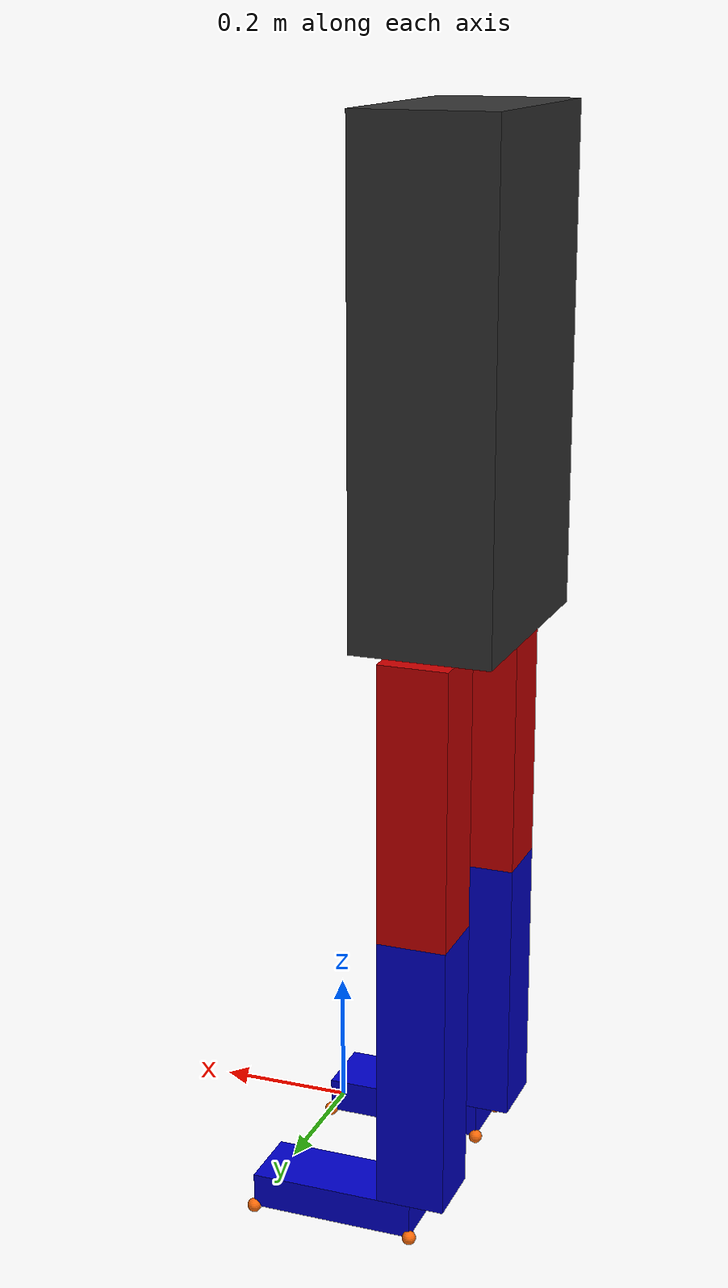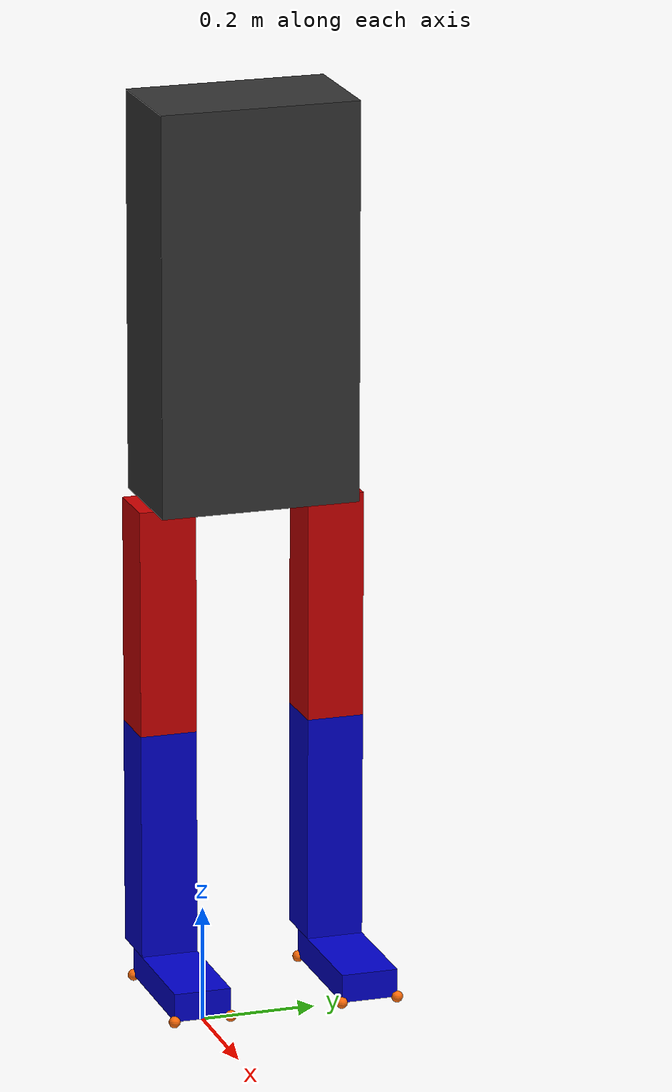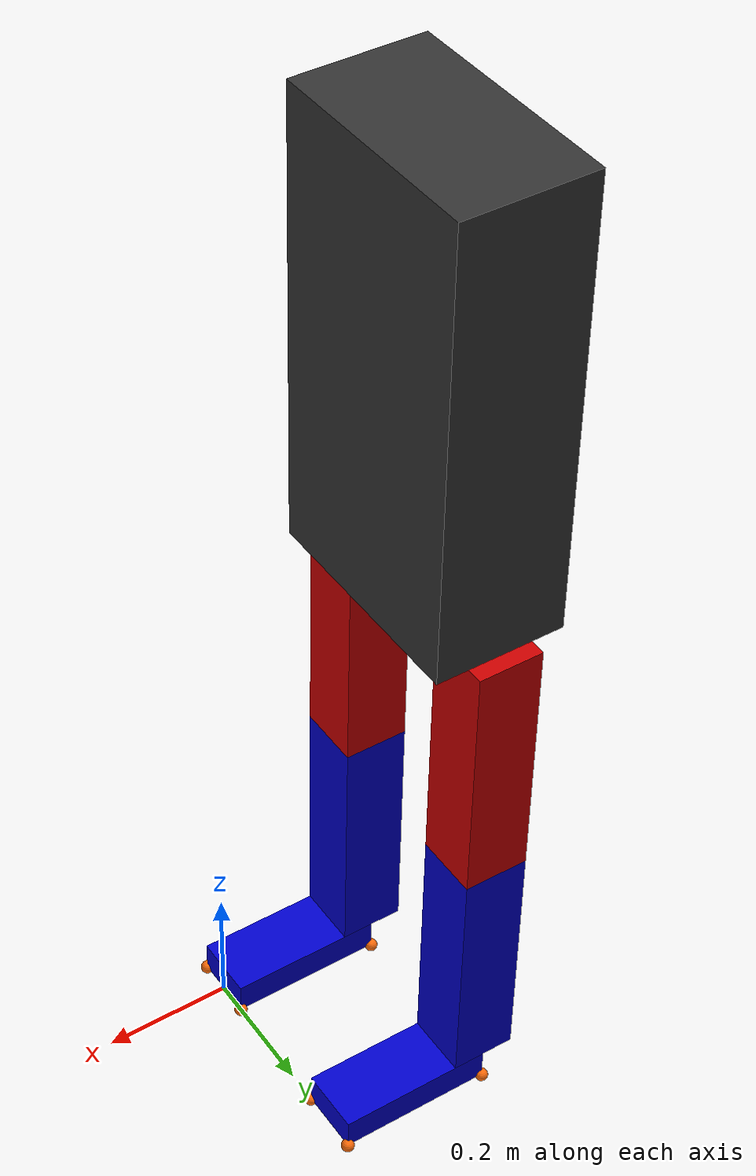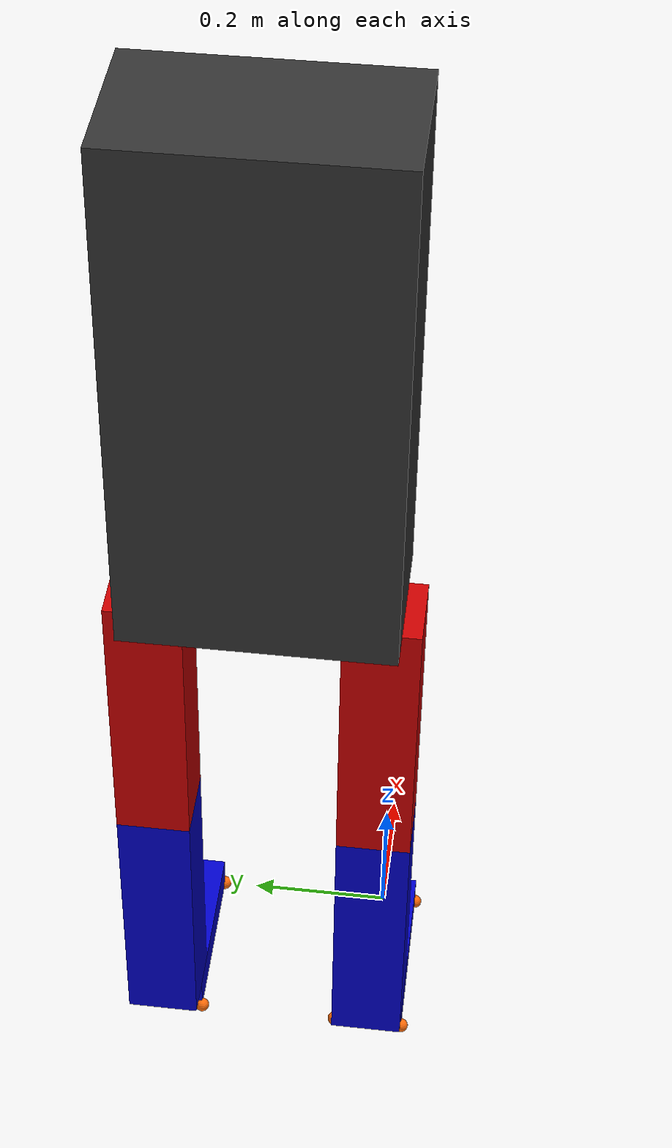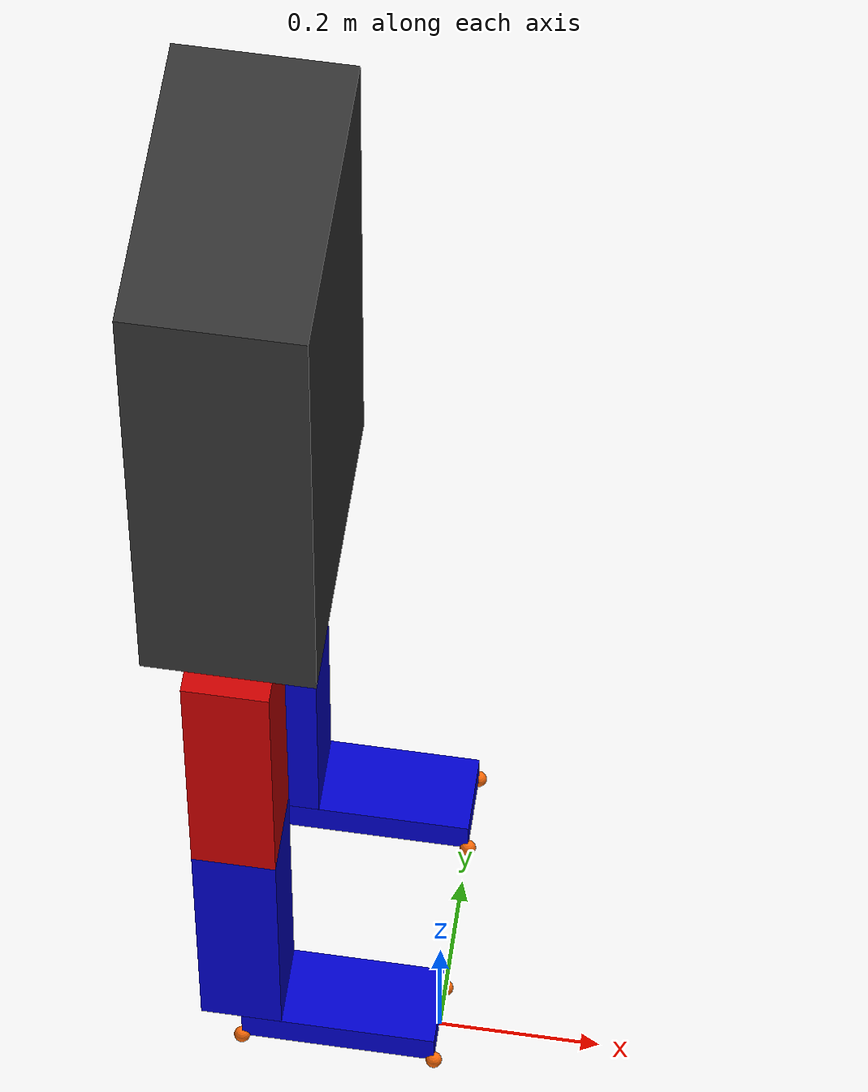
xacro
<robot xmlns:xacro="http://www.ros.org/wiki/xacro" name="touch_right">
    <xacro:property name="PI" value="3.14115926" />
    <xacro:property name="mass" value="67" />
    <xacro:property name="height" value="1.78" />
    <xacro:property name="ref_mass" value="73" />
    <xacro:property name="ref_height" value="1.741" />
    <xacro:property name="foot_length" value="0.24" />
    <xacro:property name="shank_length" value="0.4" />
    <xacro:property name="thigh_length" value="0.4" />
    <xacro:property name="trunk_length" value="0.7" />
    <material name="black">
        <color rgba="0.0 0.0 0.0 1.0" />
    </material>
    <material name="blue">
        <color rgba="0.0 0.0 0.8 1.0" />
    </material>
    <material name="green">
        <color rgba="0.0 0.8 0.0 1.0" />
    </material>
    <material name="gray">
        <color rgba="0.2 0.2 0.2 1.0" />
    </material>
    <material name="silver">
        <color rgba="0.9137254901960784 0.9137254901960784 0.8470588235294118 1.0" />
    </material>
    <material name="orange">
        <color rgba="1.0 0.4235294117647059 0.0392156862745098 1.0" />
    </material>
    <material name="brown">
        <color rgba="0.8705882352941177 0.8117647058823529 0.7647058823529411 1.0" />
    </material>
    <material name="red">
        <color rgba="0.8 0.0 0.0 1.0" />
    </material>
    <material name="white">
        <color rgba="1.0 1.0 1.0 1.0" />
    </material>
    <link name="base_link">

    </link>

    <link name="foot_right">
        <visual>
            <origin rpy="0 0 0" xyz="${-0.5*foot_length} 0 0.025" />
            <geometry>
                <box size="${foot_length} 0.1 0.05" />
            </geometry>
            <material name="blue" />
        </visual>
        <collision>
            <origin rpy="0 0 0" xyz="${-0.5*foot_length} 0 0.025" />
            <geometry>
                <box size="${0.5*foot_length} 0.05 0.025" />
            </geometry>
        </collision>
        <inertial>
            <mass value="${0.0137*mass}" />
            <origin rpy="0 0 0" xyz="${-(1-0.4415)*foot_length} 0 0.025" />
            <inertia ixx="${0.0137*mass*0.124*(foot_length)*0.124*(foot_length)}" ixy="0" ixz="0" iyy="${0.0137*mass*0.245*(foot_length)*0.245*(foot_length)}" iyz="0" izz="${0.0137*mass*0.257*(foot_length)*0.257*(foot_length)}" />
        </inertial>
    </link>
    <joint name="toe" type="revolute">
        <parent link="base_link" />
        <child link="foot_right" />
        <origin xyz="0 0 0" rpy="0 0 0" />
        <axis xyz="0 1 0" />
        <limit effort="0" lower="-3.14" upper="3.14" velocity="21" />
    </joint>
    <link name="shank_right">
        <visual>
            <origin rpy="0 0 0" xyz=" 0 0 ${0.5*shank_length}" />
            <geometry>
                <box size="0.1 0.1 ${shank_length}" />
            </geometry>
            <material name="blue" />
        </visual>
        <collision>
            <origin rpy="0 0 0" xyz="0 0 ${0.5*shank_length}" />
            <geometry>
                <box size="0.05 0.05 ${0.5*shank_length}" />
            </geometry>
        </collision>
        <inertial>
            <mass value="${0.0433*mass}" />
            <origin rpy="0 0 0" xyz="0 0 ${(1-0.4459)*shank_length}" />
            <inertia ixx="${0.0433*mass*0.255*(shank_length)*0.255*(shank_length)}" ixy="0" ixz="0" iyy="${0.0433*mass*0.249*(shank_length)*0.249*(shank_length)}" iyz="0" izz="${0.0433*mass*0.103*(shank_length)*0.103*(shank_length)}" />
        </inertial>
    </link>
    <joint name="ankle_right" type="revolute">
        <origin rpy="0 0 0" xyz="${-foot_length} 0 0.05" />
        <parent link="foot_right" />
        <child link="shank_right" />
        <axis xyz="0 1 0" />
        <limit effort="0" lower="-0.78" upper="0.78" velocity="21" />
    </joint>
    <link name="thigh_right">
        <visual>
            <origin rpy="0 0 0" xyz=" 0 0 ${0.5*thigh_length}" />
            <geometry>
                <box size="0.1 0.1 ${thigh_length}" />
            </geometry>
            <material name="red" />
        </visual>
        <collision>
            <origin rpy="0 0 0" xyz="0 0 ${0.5*thigh_length}" />
            <geometry>
                <box size="0.05 0.05 ${0.5*thigh_length}" />
            </geometry>
        </collision>
        <inertial>
            <mass value="${0.1416*mass}" />
            <origin rpy="0 0 0" xyz="0 0 ${(1-0.4095)*thigh_length}" />
            <inertia ixx="${0.1416*mass*0.329*(thigh_length)*0.329*(thigh_length)}" ixy="0" ixz="0" iyy="${0.1416*mass*0.329*(thigh_length)*0.329*(thigh_length)}" iyz="0" izz="${0.1416*mass*0.149*(thigh_length)*0.149*(thigh_length)}" />
        </inertial>
    </link>
    <joint name="knee_right" type="revolute">
        <origin rpy="0 0 0" xyz="0 0 ${shank_length}" />
        <parent link="shank_right" />
        <child link="thigh_right" />
        <axis xyz="0 1 0" />
        <limit effort="0" lower="-2.35" upper="0" velocity="21" />
    </joint>
    <link name="trunk">
        <visual>
            <origin rpy="0 0 0" xyz=" 0 0.15 ${0.5*trunk_length}" />
            <geometry>
                <box size="0.2 0.35 ${trunk_length}" />
            </geometry>
            <material name="gray" />
        </visual>
        <collision>
            <origin rpy="0 0 0" xyz="0 0.15 ${0.5*trunk_length}" />
            <geometry>
                <box size="0.1 0.175 ${0.5*trunk_length}" />
            </geometry>
        </collision>
        <inertial>
            <mass value="${0.4346*mass}" />
            <origin rpy="0 0 0" xyz="0 0.15 ${(1-0.4486)*trunk_length}" />
            <inertia ixx="${0.4346*mass*0.372*(trunk_length)*0.372*(trunk_length)}" ixy="0" ixz="0" iyy="${0.4346*mass*0.347*(trunk_length)*0.347*(trunk_length)}" iyz="0" izz="${0.4346*mass*0.191*(trunk_length)*0.191*(trunk_length)}" />
        </inertial>
    </link>
    <joint name="hip_right" type="revolute">
        <origin rpy="0 0 0" xyz="0 0 ${thigh_length}" />
        <parent link="thigh_right" />
        <child link="trunk" />
        <axis xyz="0 1 0" />
        <limit effort="0" lower="-0.523" upper="1.57" velocity="21" />
    </joint>
    <link name="thigh_left">
        <visual>
            <origin rpy="0 0 0" xyz=" 0 0 ${-0.5*thigh_length}" />
            <geometry>
                <box size="0.1 0.1 ${thigh_length}" />
            </geometry>
            <material name="red" />
        </visual>
        <collision>
            <origin rpy="0 0 0" xyz="0 0 ${-0.5*thigh_length}" />
            <geometry>
                <box size="0.05 0.05 ${0.5*thigh_length}" />
            </geometry>
        </collision>
        <inertial>
            <mass value="${0.1416*mass}" />
            <origin rpy="0 0 0" xyz="0 0 ${-0.4095*thigh_length}" />
            <inertia ixx="${0.1416*mass*0.329*(thigh_length)*0.329*(thigh_length)}" ixy="0" ixz="0" iyy="${0.1416*mass*0.329*(thigh_length)*0.329*(thigh_length)}" iyz="0" izz="${0.1416*mass*0.149*(thigh_length)*0.149*(thigh_length)}" />
        </inertial>
    </link>
    <joint name="hip_left" type="revolute">
        <origin rpy="0 0 0" xyz="0 0.3 0" />
        <parent link="trunk" />
        <child link="thigh_left" />
        <axis xyz="0 1 0" />
        <limit effort="0" lower="-1.57" upper="0.523" velocity="21" />
    </joint>
    <link name="shank_left">
        <visual>
            <origin rpy="0 0 0" xyz=" 0 0 ${-0.5*shank_length}" />
            <geometry>
                <box size="0.1 0.1 ${shank_length}" />
            </geometry>
            <material name="blue" />
        </visual>
        <collision>
            <origin rpy="0 0 0" xyz="0 0 ${-0.5*shank_length}" />
            <geometry>
                <box size="0.05 0.05 ${0.5*shank_length}" />
            </geometry>
        </collision>
        <inertial>
            <mass value="${0.0433*mass}" />
            <origin rpy="0 0 0" xyz="0 0 ${-0.4459*shank_length}" />
            <inertia ixx="${0.0433*mass*0.255*(shank_length)*0.255*(shank_length)}" ixy="0" ixz="0" iyy="${0.0433*mass*0.249*(shank_length)*0.249*(shank_length)}" iyz="0" izz="${0.0433*mass*0.103*(shank_length)*0.103*(shank_length)}" />
        </inertial>
    </link>
    <joint name="knee_left" type="revolute">
        <origin rpy="0 0 0" xyz="0 0 ${-thigh_length}" />
        <parent link="thigh_left" />
        <child link="shank_left" />
        <axis xyz="0 1 0" />
        <limit effort="0" lower="0" upper="2.35" velocity="21" />
    </joint>
    <link name="foot_left">
        <visual>
            <origin rpy="0 0 0" xyz="${0.5*foot_length} 0 -0.025" />
            <geometry>
                <box size="${foot_length} 0.1 0.05" />
            </geometry>
            <material name="blue" />
        </visual>
        <collision>
            <origin rpy="0 0 0" xyz="${0.5*foot_length} 0 -0.025" />
            <geometry>
                <box size="${0.5*foot_length} 0.05 0.025" />
            </geometry>
        </collision>
        <inertial>
            <mass value="${0.0137*mass}" />
            <origin rpy="0 0 0" xyz="${0.4415*foot_length} 0 -0.025" />
            <inertia ixx="${0.0137*mass*0.124*(foot_length)*0.124*(foot_length)}" ixy="0" ixz="0" iyy="${0.0137*mass*0.245*(foot_length)*0.245*(foot_length)}" iyz="0" izz="${0.0137*mass*0.257*(foot_length)*0.257*(foot_length)}" />
        </inertial>
    </link>
    <joint name="ankle_left" type="revolute">
        <origin rpy="0 0 0" xyz="0 0 ${-shank_length}" />
        <parent link="shank_left" />
        <child link="foot_left" />
        <axis xyz="0 1 0" />
        <limit effort="0" lower="-0.78" upper="0.78" velocity="21" />
    </joint>

    <link name="foot_right_com">
        <visual>
            <origin rpy="0 0 0" xyz="0 0 0" />
            <geometry>
                <sphere radius="0.02" />
            </geometry>
            <material name="black" />
        </visual>
    </link>
    <joint name="foot_right_com_joint" type="fixed">
        <origin rpy="0 0 0" xyz="${-(1-0.4415)*foot_length} 0 0.025" />
        <parent link="foot_right" />
        <child link="foot_right_com" />
    </joint>
    <link name="shank_right_com">
        <visual>
            <origin rpy="0 0 0" xyz="0 0 0" />
            <geometry>
                <sphere radius="0.02" />
            </geometry>
            <material name="black" />
        </visual>
    </link>
    <joint name="shank_right_com_joint" type="fixed">
        <origin rpy="0 0 0" xyz="0 0 ${(1-0.4459)*shank_length}" />
        <parent link="shank_right" />
        <child link="shank_right_com" />
    </joint>
    <link name="thigh_right_com">
        <visual>
            <origin rpy="0 0 0" xyz="0 0 0" />
            <geometry>
                <sphere radius="0.02" />
            </geometry>
            <material name="black" />
        </visual>
    </link>
    <joint name="thigh_right_com_joint" type="fixed">
        <origin rpy="0 0 0" xyz="0 0 ${(1-0.4095)*thigh_length}" />
        <parent link="thigh_right" />
        <child link="thigh_right_com" />
    </joint>
    <link name="trunk_inertia">
        <visual>
        <origin rpy="0 0 0" xyz="0 0 0" />
        <geometry>
            <sphere radius="0.002" />
        </geometry>
        <material name="black" />
        </visual>
    </link>
    <joint name="trunk_inertia_fixed" type="fixed">
        <origin rpy="0 0 0" xyz="0 0.15 ${0.5*trunk_length}" />
        <parent link="trunk" />
        <child link="trunk_inertia" />
    </joint>
    <link name="trunk_com">
        <visual>
            <origin rpy="0 0 0" xyz="0 0 0" />
            <geometry>
                <sphere radius="0.02" />
            </geometry>
            <material name="black" />
        </visual>
    </link>
    <joint name="trunk_com_joint" type="fixed">
        <origin rpy="0 0 0" xyz="0 0.15 ${(1-0.4486)*trunk_length}" />
        <parent link="trunk" />
        <child link="trunk_com" />
    </joint>
    <link name="thigh_left_com">
        <visual>
            <origin rpy="0 0 0" xyz="0 0 0" />
            <geometry>
                <sphere radius="0.02" />
            </geometry>
            <material name="black" />
        </visual>
    </link>
    <joint name="thigh_left_com_joint" type="fixed">
        <origin rpy="0 0 0" xyz="0 0 ${-0.4095*thigh_length}" />
        <parent link="thigh_left" />
        <child link="thigh_left_com" />
    </joint>
    <link name="shank_left_com">
        <visual>
            <origin rpy="0 0 0" xyz="0 0 0" />
            <geometry>
                <sphere radius="0.02" />
            </geometry>
            <material name="black" />
        </visual>
    </link>
    <joint name="shank_left_com_joint" type="fixed">
        <origin rpy="0 0 0" xyz="0 0 ${-0.442*thigh_length}" />
        <parent link="shank_left" />
        <child link="shank_left_com" />
    </joint>
    <link name="foot_left_com">
        <visual>
            <origin rpy="0 0 0" xyz="0 0 0" />
            <geometry>
                <sphere radius="0.02" />
            </geometry>
            <material name="black" />
        </visual>
    </link>
    <joint name="foot_left_com_joint" type="fixed">
        <origin rpy="0 0 0" xyz="${0.4415*foot_length} 0 -0.025" />
        <parent link="foot_left" />
        <child link="foot_left_com" />
    </joint>

    <link name="foot_right_contact0">
        <visual>
            <origin rpy="0 0 0" xyz="0 0 0" />
            <geometry>
                <sphere radius="0.01" />
            </geometry>
            <material name="orange" />
        </visual>
    </link>
    <link name="foot_right_contact1">
        <visual>
            <origin rpy="0 0 0" xyz="0 0 0" />
            <geometry>
                <sphere radius="0.01" />
            </geometry>
            <material name="orange" />
        </visual>
    </link>
    <link name="foot_right_contact2">
        <visual>
            <origin rpy="0 0 0" xyz="0 0 0" />
            <geometry>
                <sphere radius="0.01" />
            </geometry>
            <material name="orange" />
        </visual>
    </link>
    <link name="foot_right_contact3">
        <visual>
            <origin rpy="0 0 0" xyz="0 0 0" />
            <geometry>
                <sphere radius="0.01" />
            </geometry>
            <material name="orange" />
        </visual>
    </link>
    <joint name="foot_right_contact0_fixed" type="fixed">
        <origin rpy="0 0 0" xyz="${0*foot_length} 0.05 0" />
        <parent link="foot_right" />
        <child link="foot_right_contact0" />
    </joint>
    <joint name="foot_right_contact1_fixed" type="fixed">
        <origin rpy="0 0 0" xyz="${0*foot_length} -0.05 0" />
        <parent link="foot_right" />
        <child link="foot_right_contact1" />
    </joint>
    <joint name="foot_right_contact2_fixed" type="fixed">
        <origin rpy="0 0 0" xyz="${-foot_length} -0.05 0" />
        <parent link="foot_right" />
        <child link="foot_right_contact2" />
    </joint>
    <joint name="foot_right_contact3_fixed" type="fixed">
        <origin rpy="0 0 0" xyz="${-foot_length} 0.05 0" />
        <parent link="foot_right" />
        <child link="foot_right_contact3" />
    </joint>

    <link name="foot_left_contact0">
        <visual>
            <origin rpy="0 0 0" xyz="0 0 0" />
            <geometry>
                <sphere radius="0.01" />
            </geometry>
            <material name="orange" />
        </visual>
    </link>
    <link name="foot_left_contact1">
        <visual>
            <origin rpy="0 0 0" xyz="0 0 0" />
            <geometry>
                <sphere radius="0.01" />
            </geometry>
            <material name="orange" />
        </visual>
    </link>
    <link name="foot_left_contact2">
        <visual>
            <origin rpy="0 0 0" xyz="0 0 0" />
            <geometry>
                <sphere radius="0.01" />
            </geometry>
            <material name="orange" />
        </visual>
    </link>
    <link name="foot_left_contact3">
        <visual>
            <origin rpy="0 0 0" xyz="0 0 0" />
            <geometry>
                <sphere radius="0.01" />
            </geometry>
            <material name="orange" />
        </visual>
    </link>
    <joint name="foot_left_contact0_fixed" type="fixed">
        <origin rpy="0 0 0" xyz="${1*foot_length} 0.05 -0.05" />
        <parent link="foot_left" />
        <child link="foot_left_contact0" />
    </joint>
    <joint name="foot_left_contact1_fixed" type="fixed">
        <origin rpy="0 0 0" xyz="${1*foot_length} -0.05 -0.05" />
        <parent link="foot_left" />
        <child link="foot_left_contact1" />
    </joint>
    <joint name="foot_left_contact2_fixed" type="fixed">
        <origin rpy="0 0 0" xyz="${0*foot_length} -0.05 -0.05" />
        <parent link="foot_left" />
        <child link="foot_left_contact2" />
    </joint>
    <joint name="foot_left_contact3_fixed" type="fixed">
        <origin rpy="0 0 0" xyz="${0*foot_length} 0.05 -0.05" />
        <parent link="foot_left" />
        <child link="foot_left_contact3" />
    </joint>
</robot>
